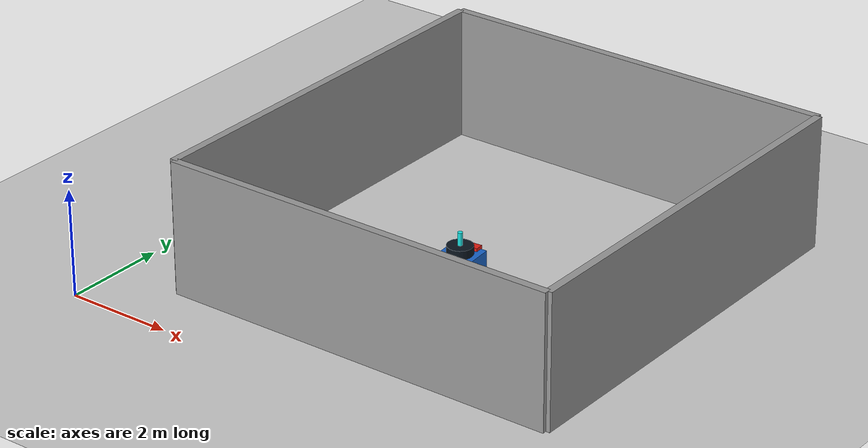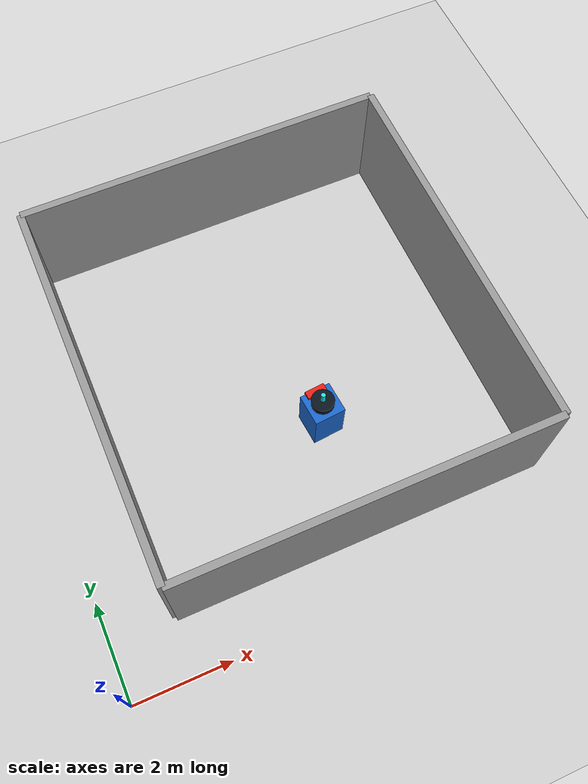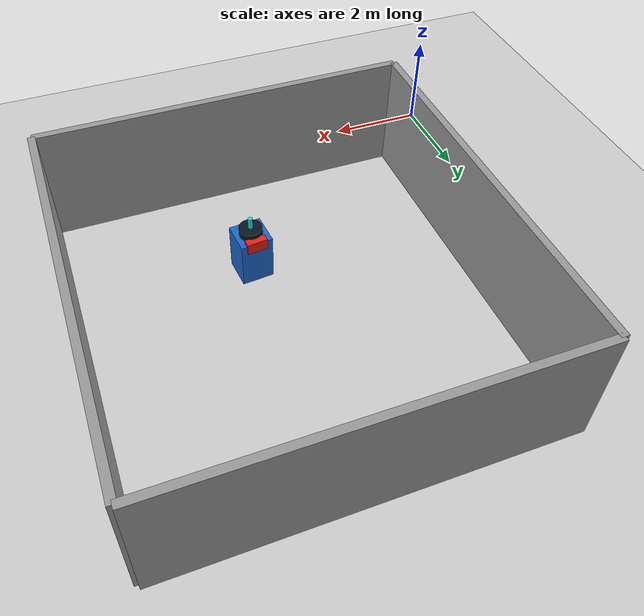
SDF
<sdf version="1.7">
 <world name="default">
  <plugin name="socnav_plugin" filename="libSocNavPlugin.so">
   <robot_name>robot</robot_name>
   <trajectory_file>/home/hunav_gz_classic_ws/SocNav3_trajectories/src2/000000361.json</trajectory_file>
   <human_slots>2</human_slots>
   <goal_angle_mesh>
    <angle_threshold>0.1</angle_threshold>
    <uri>/home/hunav_gz_classic_ws/src/socnav_gazebo_reproducer/meshes/000000361_goal_angle_00.stl</uri>
   </goal_angle_mesh>
  </plugin>
  <light name="sun" type="directional">
   <pose>0 0 10 0 -0 0</pose>
   <diffuse>0.8 0.8 0.8 1</diffuse>
   <specular>0.2 0.2 0.2 1</specular>
   <attenuation>
    <range>1000</range>
    <constant>0.9</constant>
    <linear>0.01</linear>
    <quadratic>0.001</quadratic>
   </attenuation>
   <direction>-0.5 0.1 -0.9</direction>
   <spot><inner_angle>0</inner_angle><outer_angle>0</outer_angle><falloff>0</falloff></spot>
  </light>
  <model name="ground_plane">
   <static>1</static>
   <link name="link">
    <collision name="collision">
     <geometry><plane><normal>0 0 1</normal><size>100 100</size></plane></geometry>
     <surface><friction><ode><mu>100</mu><mu2>50</mu2></ode></friction></surface>
    </collision>
    <visual name="visual">
     <cast_shadows>0</cast_shadows>
     <geometry><plane><normal>0 0 1</normal><size>100 100</size></plane></geometry>
     <material>
      <script><uri>file://media/materials/scripts/kitchen.material</uri><name>Kitchen/CounterTop_H</name></script>
     </material>
    </visual>
   </link>
  </model>
  <gravity>0 0 -9.8</gravity>
  <magnetic_field>6e-06 2.3e-05 -4.2e-05</magnetic_field>
  <atmosphere type="adiabatic"/>
  <physics type="ode">
   <max_step_size>0.001</max_step_size>
   <real_time_factor>1</real_time_factor>
   <real_time_update_rate>1000</real_time_update_rate>
  </physics>
  <scene><ambient>0.4 0.4 0.4 1</ambient><background>0.7 0.7 0.7 1</background><shadows>1</shadows></scene>
  <audio><device>default</device></audio>
  <spherical_coordinates>
   <surface_model>EARTH_WGS84</surface_model>
   <latitude_deg>0</latitude_deg>
   <longitude_deg>0</longitude_deg>
   <elevation>0</elevation>
   <heading_deg>0</heading_deg>
  </spherical_coordinates>
  <model name="robot">
   <pose>5.423628806056935 3.6523025396470588 0.5 0 0 1.654360129653623</pose>
   <link name="link">
    <collision name="collision"><geometry><box><size>0.65 0.65 1.0</size></box></geometry></collision>
    <visual name="visual">
     <geometry><box><size>0.65 0.65 1.0</size></box></geometry>
     <material><ambient>0.1 0.4 0.8 1</ambient><diffuse>0.1 0.4 0.8 1</diffuse></material>
    </visual>
    <visual name="robot_top">
     <pose>0 0 0.58 0 0 0</pose>
     <geometry><cylinder><radius>0.23399999999999999</radius><length>0.16</length></cylinder></geometry>
     <material><ambient>0.04 0.08 0.12 1</ambient><diffuse>0.04 0.08 0.12 1</diffuse></material>
    </visual>
    <visual name="robot_front">
     <pose>0.273 0 0.44 0 0 0</pose>
     <geometry><box><size>0.156 0.41600000000000004 0.24</size></box></geometry>
     <material><ambient>0.9 0.12 0.08 1</ambient><diffuse>0.9 0.12 0.08 1</diffuse></material>
    </visual>
    <visual name="robot_sensor">
     <pose>0 0 0.78 0 0 0</pose>
     <geometry><cylinder><radius>0.045500000000000006</radius><length>0.24</length></cylinder></geometry>
     <material><ambient>0.1 0.9 0.9 1</ambient><diffuse>0.1 0.9 0.9 1</diffuse></material>
    </visual>
   </link>
  </model>
  <model name="simple_world_test">
   <link name="Wall_0">
    <collision name="Wall_0_Collision">
     <geometry><box><size>7.666723439481363 0.15 2.5</size></box></geometry>
     <pose>0 0 1.25 0 -0 0</pose>
    </collision>
    <visual name="Wall_0_Visual">
     <pose>0 0 1.25 0 -0 0</pose>
     <geometry><box><size>7.666723439481363 0.15 2.5</size></box></geometry>
     <material>
      <script><uri>file://media/materials/scripts/gazebo.material</uri><name>Gazebo/Grey</name></script>
      <ambient>1 1 1 1</ambient>
     </material>
     <meta><layer>0</layer></meta>
    </visual>
    <pose>5.15 1.1666382802593191 0 0 -0 0.0</pose>
   </link>
   <link name="Wall_1">
    <collision name="Wall_1_Collision">
     <geometry><box><size>7.9667234394813615 0.15 2.5</size></box></geometry>
     <pose>0 0 1.25 0 -0 0</pose>
    </collision>
    <visual name="Wall_1_Visual">
     <pose>0 0 1.25 0 -0 0</pose>
     <geometry><box><size>7.9667234394813615 0.15 2.5</size></box></geometry>
     <material>
      <script><uri>file://media/materials/scripts/gazebo.material</uri><name>Gazebo/Grey</name></script>
      <ambient>1 1 1 1</ambient>
     </material>
     <meta><layer>0</layer></meta>
    </visual>
    <pose>8.983361719740682 5.1499999999999995 0 0 -0 1.5707963267948966</pose>
   </link>
   <link name="Wall_2">
    <collision name="Wall_2_Collision">
     <geometry><box><size>7.666723439481363 0.15 2.5</size></box></geometry>
     <pose>0 0 1.25 0 -0 0</pose>
    </collision>
    <visual name="Wall_2_Visual">
     <pose>0 0 1.25 0 -0 0</pose>
     <geometry><box><size>7.666723439481363 0.15 2.5</size></box></geometry>
     <material>
      <script><uri>file://media/materials/scripts/gazebo.material</uri><name>Gazebo/Grey</name></script>
      <ambient>1 1 1 1</ambient>
     </material>
     <meta><layer>0</layer></meta>
    </visual>
    <pose>5.15 9.13336171974068 0 0 -0 3.141592653589793</pose>
   </link>
   <link name="Wall_3">
    <collision name="Wall_3_Collision">
     <geometry><box><size>7.9667234394813615 0.15 2.5</size></box></geometry>
     <pose>0 0 1.25 0 -0 0</pose>
    </collision>
    <visual name="Wall_3_Visual">
     <pose>0 0 1.25 0 -0 0</pose>
     <geometry><box><size>7.9667234394813615 0.15 2.5</size></box></geometry>
     <material>
      <script><uri>file://media/materials/scripts/gazebo.material</uri><name>Gazebo/Grey</name></script>
      <ambient>1 1 1 1</ambient>
     </material>
     <meta><layer>0</layer></meta>
    </visual>
    <pose>1.316638280259319 5.1499999999999995 0 0 -0 -1.5707963267948966</pose>
   </link>
   <static>1</static>
  </model>
 </world>
</sdf>
